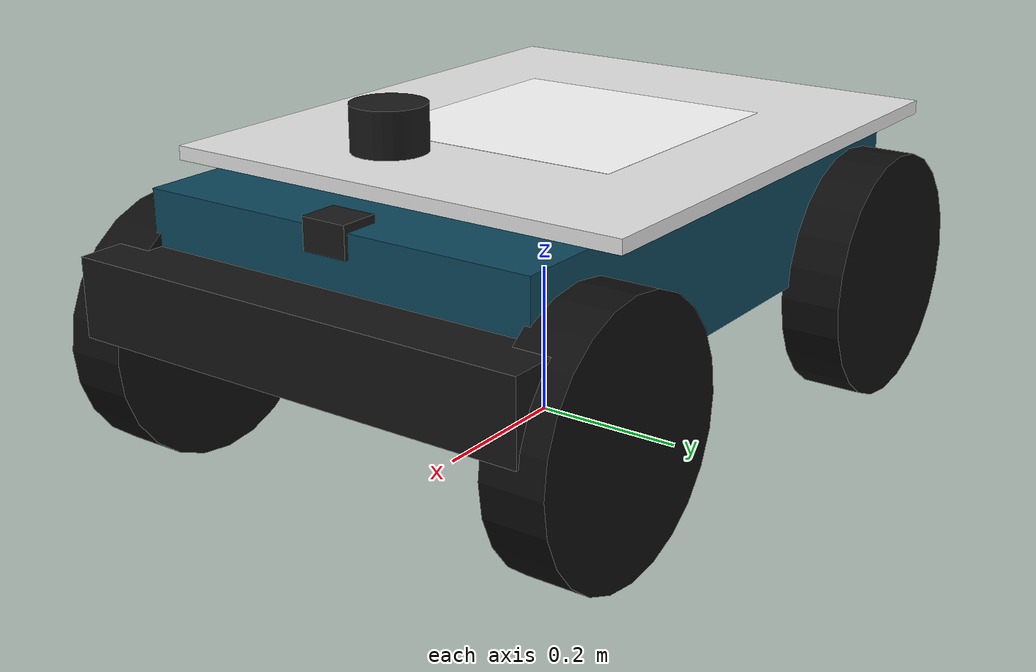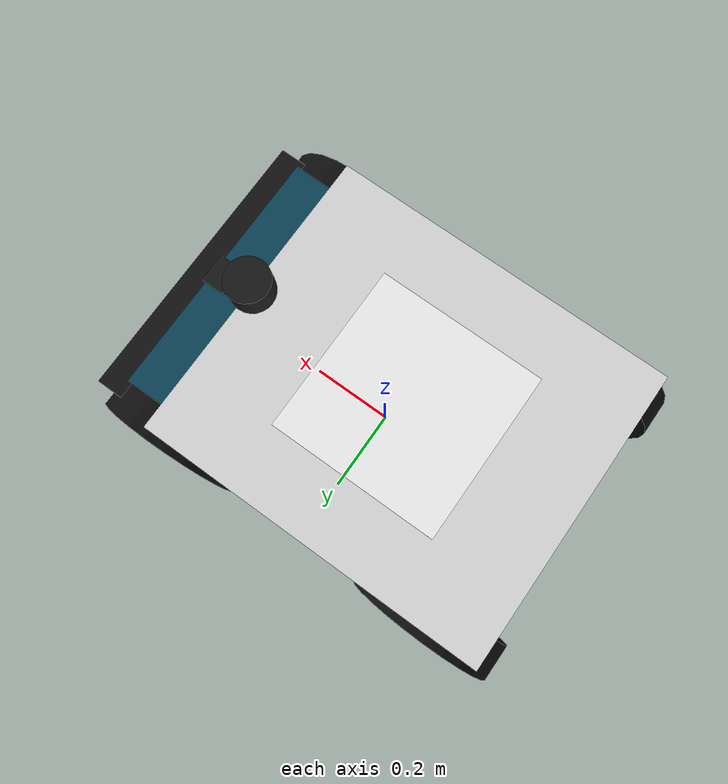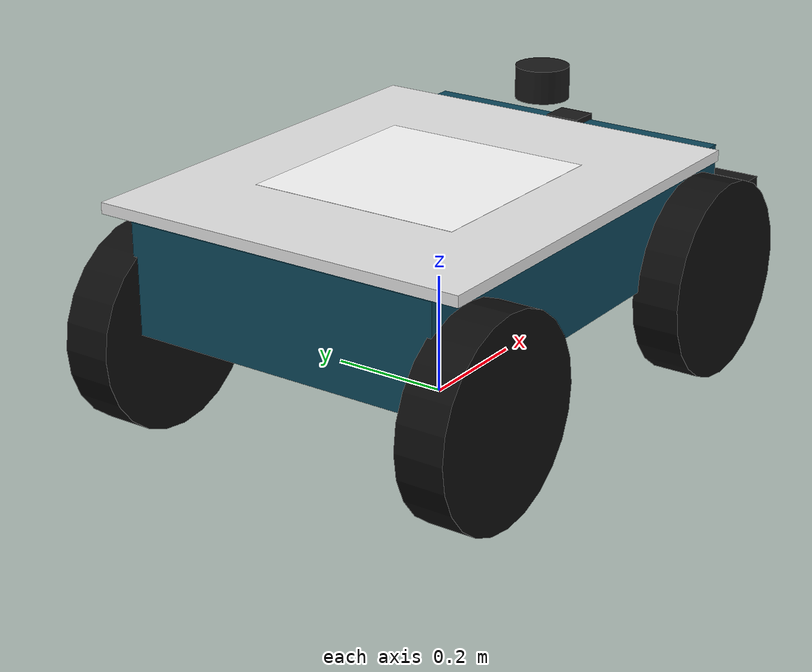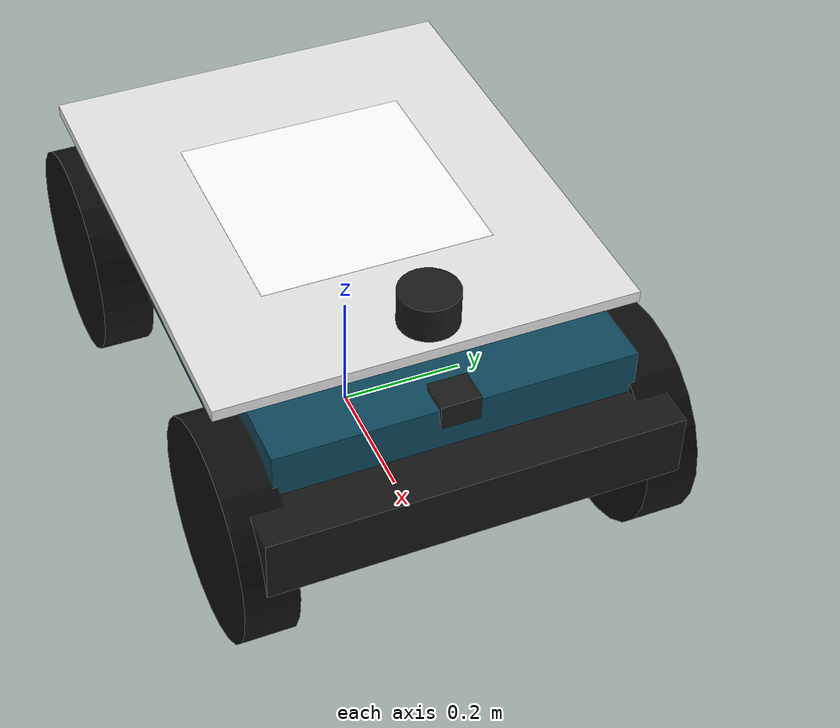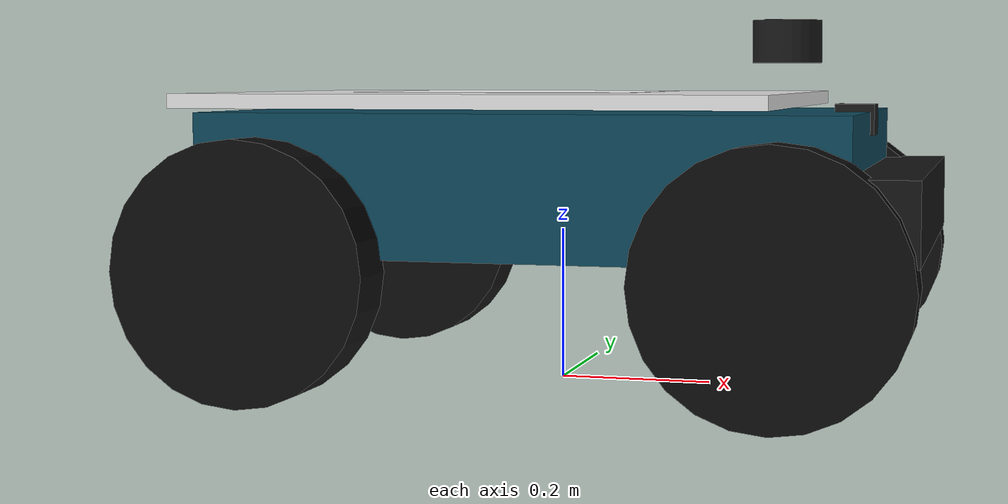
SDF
<?xml version="1.0"?>
<sdf version="1.9">
  <model name="hunter_ackermann">
    <self_collide>false</self_collide>

    <!-- Hunter V2 dimensions used by the real driver and adapter:
         wheelbase 0.650 m, track 0.605 m, wheel radius 0.165 m. -->
    <link name="base_link">
      <pose>0 0 0.27 0 0 0</pose>
      <inertial>
        <mass>46.0</mass>
        <inertia>
          <ixx>1.55</ixx><iyy>2.75</iyy><izz>3.60</izz>
        </inertia>
      </inertial>
      <collision name="body_collision">
        <geometry><box><size>0.82 0.54 0.18</size></box></geometry>
      </collision>
      <visual name="body_visual">
        <geometry><box><size>0.82 0.54 0.18</size></box></geometry>
        <material>
          <ambient>0.03 0.12 0.16 1</ambient>
          <diffuse>0.05 0.28 0.36 1</diffuse>
          <specular>0.08 0.08 0.08 1</specular>
        </material>
      </visual>
      <visual name="front_bumper">
        <pose>0.45 0 -0.03 0 0 0</pose>
        <geometry><box><size>0.08 0.62 0.10</size></box></geometry>
        <material><ambient>0.04 0.04 0.04 1</ambient><diffuse>0.08 0.08 0.08 1</diffuse></material>
      </visual>
      <visual name="landing_pad">
        <pose>-0.05 0 0.105 0 0 0</pose>
        <geometry><box><size>0.74 0.64 0.018</size></box></geometry>
        <material><ambient>0.8 0.8 0.8 1</ambient><diffuse>0.9 0.9 0.9 1</diffuse></material>
      </visual>
      <collision name="landing_pad_collision">
        <pose>-0.05 0 0.105 0 0 0</pose>
        <geometry><box><size>0.74 0.64 0.018</size></box></geometry>
        <surface>
          <friction><ode><mu>1.4</mu><mu2>1.4</mu2></ode></friction>
          <contact><ode><kp>1000000</kp><kd>100</kd></ode></contact>
        </surface>
      </collision>
      <visual name="apriltag_id0">
        <pose>-0.05 0 0.115 0 0 0</pose>
        <geometry><plane><normal>0 0 1</normal><size>0.36 0.36</size></plane></geometry>
        <material>
          <ambient>1 1 1 1</ambient><diffuse>1 1 1 1</diffuse><specular>0 0 0 1</specular>
          <pbr>
            <metal>
              <albedo_map>model://ground_vehicle/materials/textures/tag36h11_id0.png</albedo_map>
              <metalness>0.0</metalness><roughness>1.0</roughness>
            </metal>
          </pbr>
        </material>
      </visual>
    </link>

    <link name="front_left_steering_link">
      <pose>0.325 0.3025 0.165 0 0 0</pose>
      <inertial><mass>0.35</mass><inertia><ixx>0.002</ixx><iyy>0.002</iyy><izz>0.002</izz></inertia></inertial>
      <visual name="hub"><geometry><cylinder><radius>0.035</radius><length>0.08</length></cylinder></geometry></visual>
    </link>
    <link name="front_right_steering_link">
      <pose>0.325 -0.3025 0.165 0 0 0</pose>
      <inertial><mass>0.35</mass><inertia><ixx>0.002</ixx><iyy>0.002</iyy><izz>0.002</izz></inertia></inertial>
      <visual name="hub"><geometry><cylinder><radius>0.035</radius><length>0.08</length></cylinder></geometry></visual>
    </link>

    <link name="front_left_wheel">
      <pose>0.325 0.3025 0.165 -1.57079632679 0 0</pose>
      <inertial><mass>2.2</mass><inertia><ixx>0.035</ixx><iyy>0.035</iyy><izz>0.060</izz></inertia></inertial>
      <collision name="collision">
        <geometry><cylinder><radius>0.165</radius><length>0.08</length></cylinder></geometry>
        <surface><friction><ode><mu>0.8</mu><mu2>1.4</mu2><fdir1>0 0 1</fdir1></ode></friction></surface>
      </collision>
      <visual name="visual"><geometry><cylinder><radius>0.165</radius><length>0.08</length></cylinder></geometry><material><ambient>0.02 0.02 0.02 1</ambient><diffuse>0.05 0.05 0.05 1</diffuse></material></visual>
    </link>
    <link name="front_right_wheel">
      <pose>0.325 -0.3025 0.165 -1.57079632679 0 0</pose>
      <inertial><mass>2.2</mass><inertia><ixx>0.035</ixx><iyy>0.035</iyy><izz>0.060</izz></inertia></inertial>
      <collision name="collision">
        <geometry><cylinder><radius>0.165</radius><length>0.08</length></cylinder></geometry>
        <surface><friction><ode><mu>0.8</mu><mu2>1.4</mu2><fdir1>0 0 1</fdir1></ode></friction></surface>
      </collision>
      <visual name="visual"><geometry><cylinder><radius>0.165</radius><length>0.08</length></cylinder></geometry><material><ambient>0.02 0.02 0.02 1</ambient><diffuse>0.05 0.05 0.05 1</diffuse></material></visual>
    </link>
    <link name="rear_left_wheel">
      <pose>-0.325 0.3025 0.165 -1.57079632679 0 0</pose>
      <inertial><mass>2.2</mass><inertia><ixx>0.035</ixx><iyy>0.035</iyy><izz>0.060</izz></inertia></inertial>
      <collision name="collision">
        <geometry><cylinder><radius>0.165</radius><length>0.08</length></cylinder></geometry>
        <surface><friction><ode><mu>0.8</mu><mu2>1.4</mu2><fdir1>0 0 1</fdir1></ode></friction></surface>
      </collision>
      <visual name="visual"><geometry><cylinder><radius>0.165</radius><length>0.08</length></cylinder></geometry><material><ambient>0.02 0.02 0.02 1</ambient><diffuse>0.05 0.05 0.05 1</diffuse></material></visual>
    </link>
    <link name="rear_right_wheel">
      <pose>-0.325 -0.3025 0.165 -1.57079632679 0 0</pose>
      <inertial><mass>2.2</mass><inertia><ixx>0.035</ixx><iyy>0.035</iyy><izz>0.060</izz></inertia></inertial>
      <collision name="collision">
        <geometry><cylinder><radius>0.165</radius><length>0.08</length></cylinder></geometry>
        <surface><friction><ode><mu>0.8</mu><mu2>1.4</mu2><fdir1>0 0 1</fdir1></ode></friction></surface>
      </collision>
      <visual name="visual"><geometry><cylinder><radius>0.165</radius><length>0.08</length></cylinder></geometry><material><ambient>0.02 0.02 0.02 1</ambient><diffuse>0.05 0.05 0.05 1</diffuse></material></visual>
    </link>

    <joint name="front_left_steering_joint" type="revolute">
      <parent>base_link</parent><child>front_left_steering_link</child>
      <axis><xyz>0 0 1</xyz><limit><lower>-0.52</lower><upper>0.52</upper><velocity>1.5</velocity><effort>80</effort></limit></axis>
    </joint>
    <joint name="front_right_steering_joint" type="revolute">
      <parent>base_link</parent><child>front_right_steering_link</child>
      <axis><xyz>0 0 1</xyz><limit><lower>-0.52</lower><upper>0.52</upper><velocity>1.5</velocity><effort>80</effort></limit></axis>
    </joint>
    <joint name="front_left_wheel_joint" type="revolute">
      <parent>front_left_steering_link</parent><child>front_left_wheel</child>
      <!-- The wheel links are rolled -90 deg so positive local-Z joint
           velocity propels the chassis along +X, matching ROS convention. -->
      <axis><xyz>0 0 1</xyz><limit><lower>-1.0e16</lower><upper>1.0e16</upper></limit></axis>
    </joint>
    <joint name="front_right_wheel_joint" type="revolute">
      <parent>front_right_steering_link</parent><child>front_right_wheel</child>
      <axis><xyz>0 0 1</xyz><limit><lower>-1.0e16</lower><upper>1.0e16</upper></limit></axis>
    </joint>
    <joint name="rear_left_wheel_joint" type="revolute">
      <parent>base_link</parent><child>rear_left_wheel</child>
      <axis><xyz>0 0 1</xyz><limit><lower>-1.0e16</lower><upper>1.0e16</upper></limit></axis>
    </joint>
    <joint name="rear_right_wheel_joint" type="revolute">
      <parent>base_link</parent><child>rear_right_wheel</child>
      <axis><xyz>0 0 1</xyz><limit><lower>-1.0e16</lower><upper>1.0e16</upper></limit></axis>
    </joint>

    <link name="lidar_link">
      <pose relative_to="base_link">0.30 0 0.18 0 0 0</pose>
      <gravity>false</gravity>
      <inertial><mass>0.20</mass><inertia><ixx>0.0004</ixx><iyy>0.0004</iyy><izz>0.0004</izz></inertia></inertial>
      <visual name="visual"><geometry><cylinder><radius>0.045</radius><length>0.055</length></cylinder></geometry><material><ambient>0.04 0.04 0.04 1</ambient><diffuse>0.10 0.10 0.10 1</diffuse></material></visual>
      <sensor name="lidar" type="gpu_lidar">
        <topic>/model/ground_vehicle/scan</topic>
        <gz_frame_id>laser_frame</gz_frame_id>
        <always_on>true</always_on><update_rate>6</update_rate><visualize>false</visualize>
        <lidar>
          <scan><horizontal><samples>360</samples><resolution>1</resolution><min_angle>-3.14159265359</min_angle><max_angle>3.14159265359</max_angle></horizontal></scan>
          <range><min>0.12</min><max>20.0</max><resolution>0.01</resolution></range>
          <noise><type>gaussian</type><mean>0.0</mean><stddev>0.01</stddev></noise>
        </lidar>
      </sensor>
    </link>
    <joint name="lidar_mount" type="fixed"><parent>base_link</parent><child>lidar_link</child></joint>

    <link name="front_camera_link">
      <pose relative_to="base_link">0.39 0 0.08 0 0 0</pose>
      <gravity>false</gravity>
      <inertial><mass>0.08</mass><inertia><ixx>0.0001</ixx><iyy>0.0001</iyy><izz>0.0001</izz></inertia></inertial>
      <visual name="visual"><geometry><box><size>0.05 0.06 0.04</size></box></geometry><material><ambient>0.05 0.05 0.05 1</ambient><diffuse>0.10 0.10 0.10 1</diffuse></material></visual>
      <sensor name="front_camera" type="camera">
        <topic>/model/ground_vehicle/front_camera</topic>
        <gz_frame_id>ugv_camera_link</gz_frame_id>
        <!-- The navigation stack uses lidar, not this operator video. Keep the
             camera dormant until the lazy dashboard bridge has a viewer. -->
        <always_on>false</always_on><update_rate>4</update_rate><visualize>false</visualize>
        <camera>
          <horizontal_fov>1.3962634</horizontal_fov>
          <image><width>320</width><height>180</height><format>R8G8B8</format></image>
          <clip><near>0.08</near><far>30.0</far></clip>
          <noise><type>gaussian</type><mean>0.0</mean><stddev>0.003</stddev></noise>
        </camera>
      </sensor>
    </link>
    <joint name="front_camera_mount" type="fixed"><parent>base_link</parent><child>front_camera_link</child></joint>

    <link name="imu_link">
      <pose relative_to="base_link">0 0 0.04 0 0 0</pose>
      <gravity>false</gravity>
      <inertial><mass>0.02</mass><inertia><ixx>0.00001</ixx><iyy>0.00001</iyy><izz>0.00001</izz></inertia></inertial>
      <sensor name="imu" type="imu">
        <topic>/model/ground_vehicle/imu</topic>
        <gz_frame_id>imu_link</gz_frame_id>
        <always_on>true</always_on><update_rate>50</update_rate>
      </sensor>
    </link>
    <joint name="imu_mount" type="fixed"><parent>base_link</parent><child>imu_link</child></joint>

    <plugin filename="gz-sim-ackermann-steering-system" name="gz::sim::systems::AckermannSteering">
      <left_joint>front_left_wheel_joint</left_joint>
      <left_joint>rear_left_wheel_joint</left_joint>
      <right_joint>front_right_wheel_joint</right_joint>
      <right_joint>rear_right_wheel_joint</right_joint>
      <left_steering_joint>front_left_steering_joint</left_steering_joint>
      <right_steering_joint>front_right_steering_joint</right_steering_joint>
      <kingpin_width>0.605</kingpin_width>
      <!-- Hunter-class minimum turning radius is approximately 1.5 m. -->
      <steering_limit>0.41</steering_limit>
      <steer_p_gain>8.0</steer_p_gain>
      <wheel_base>0.650</wheel_base>
      <wheel_separation>0.605</wheel_separation>
      <wheel_radius>0.165</wheel_radius>
      <topic>/model/ground_vehicle/cmd_vel</topic>
      <odom_topic>/model/ground_vehicle/odometry</odom_topic>
      <tf_topic>/model/ground_vehicle/tf</tf_topic>
      <frame_id>odom</frame_id>
      <child_frame_id>base_link</child_frame_id>
      <odom_publish_frequency>30</odom_publish_frequency>
      <min_velocity>-1.5</min_velocity><max_velocity>1.5</max_velocity>
      <min_acceleration>-1.0</min_acceleration><max_acceleration>1.0</max_acceleration>
      <min_jerk>-4.0</min_jerk><max_jerk>4.0</max_jerk>
    </plugin>

    <plugin filename="gz-sim-detachable-joint-system"
            name="gz::sim::systems::DetachableJoint">
      <parent_link>base_link</parent_link>
      <child_model>uav</child_model>
      <child_link>dock_link</child_link>
      <detach_topic>/uav/dock/detach</detach_topic>
      <attach_topic>/uav/dock/attach</attach_topic>
      <output_topic>/uav/dock/detached</output_topic>
      <suppress_child_warning>true</suppress_child_warning>
    </plugin>
  </model>
</sdf>
